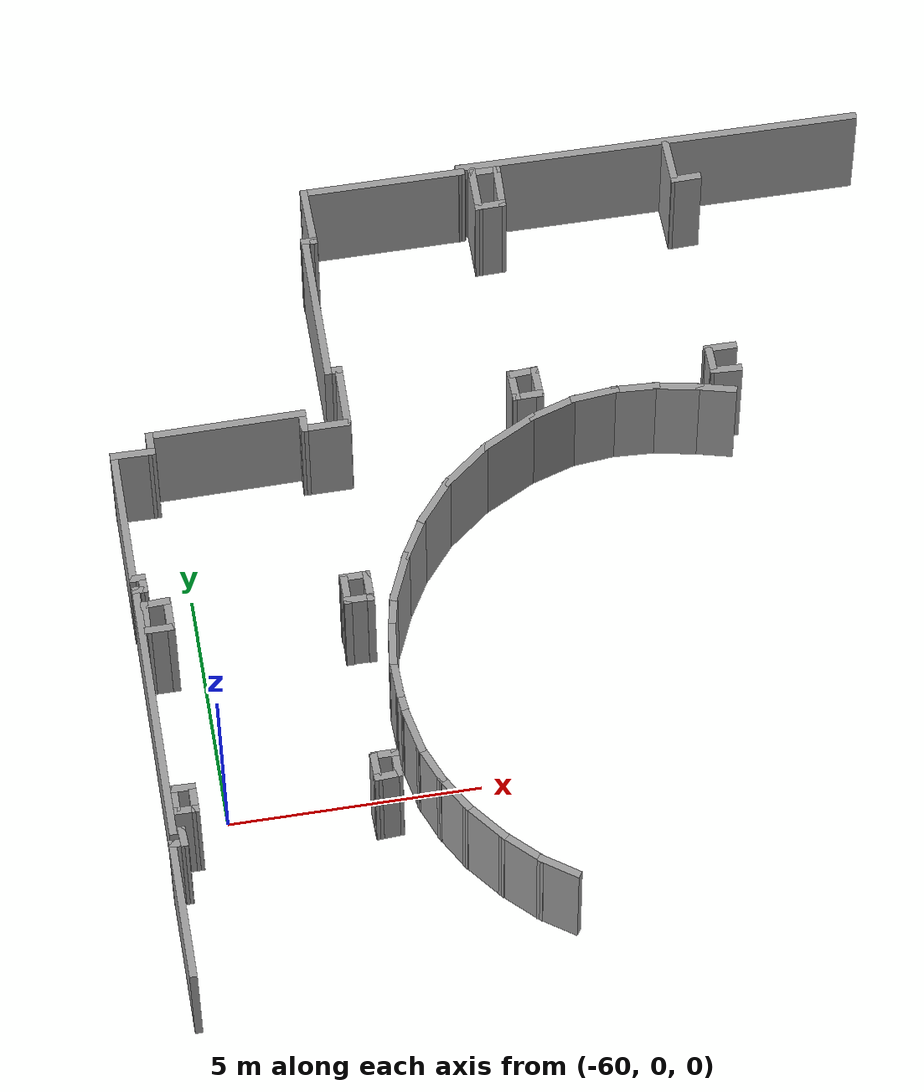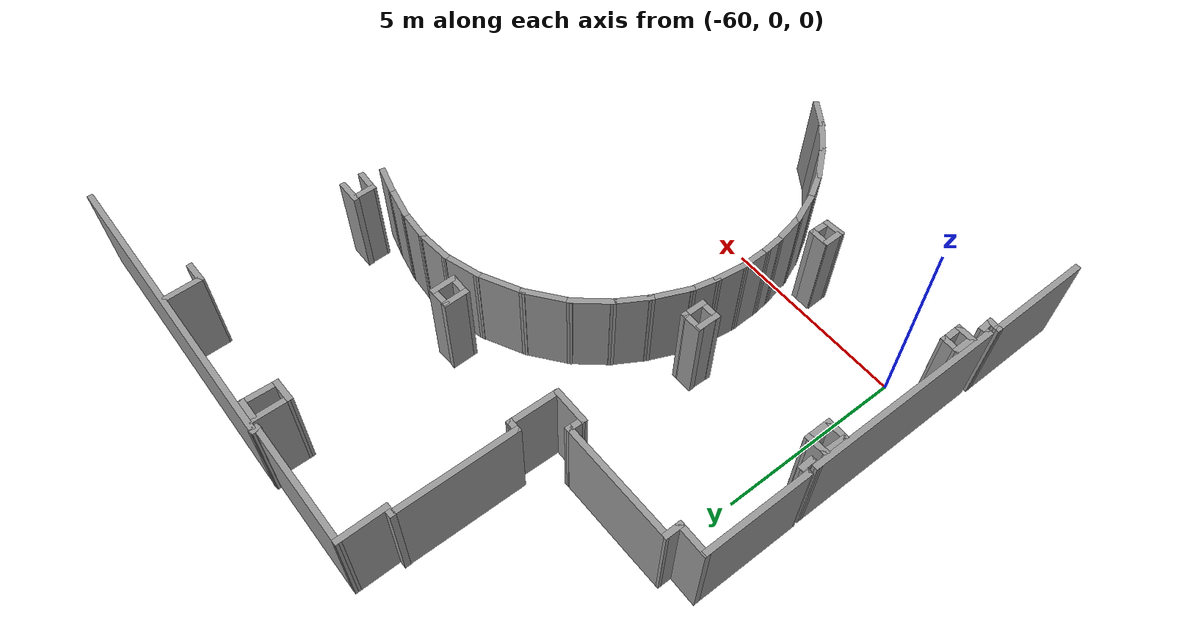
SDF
<sdf version="1.7">
 <model name="TD_n1">
  <pose>-30.6319 -9.22369 0 0 -0 0</pose>
  <link name="Wall_218">
   <collision name="Wall_218_Collision">
    <geometry><box><size>2.90531 0.15 2.5</size></box></geometry>
    <pose>0 0 1.25 0 -0 0</pose>
   </collision>
   <visual name="Wall_218_Visual">
    <pose>0 0 1.25 0 -0 0</pose>
    <geometry><box><size>2.90531 0.15 2.5</size></box></geometry>
    <material>
     <script><uri>file://media/materials/scripts/gazebo.material</uri><name>Gazebo/Grey</name></script>
     <ambient>1 1 1 1</ambient>
    </material>
    <meta><layer>0</layer></meta>
   </visual>
   <pose>-30.5469 6.34915 0 0 -0 1.57439</pose>
  </link>
  <link name="Wall_221">
   <collision name="Wall_221_Collision">
    <geometry><box><size>0.374947 0.15 2.5</size></box></geometry>
    <pose>0 0 1.25 0 -0 0</pose>
   </collision>
   <visual name="Wall_221_Visual">
    <pose>0 0 1.25 0 -0 0</pose>
    <geometry><box><size>0.374947 0.15 2.5</size></box></geometry>
    <material>
     <script><uri>file://media/materials/scripts/gazebo.material</uri><name>Gazebo/Grey</name></script>
     <ambient>1 1 1 1</ambient>
    </material>
    <meta><layer>0</layer></meta>
   </visual>
   <pose>-30.4397 7.71893 0 0 -0 -0.070015</pose>
  </link>
  <link name="Wall_222">
   <collision name="Wall_222_Collision">
    <geometry><box><size>0.42418 0.15 2.5</size></box></geometry>
    <pose>0 0 1.25 0 -0 0</pose>
   </collision>
   <visual name="Wall_222_Visual">
    <pose>0 0 1.25 0 -0 0</pose>
    <geometry><box><size>0.42418 0.15 2.5</size></box></geometry>
    <material>
     <script><uri>file://media/materials/scripts/gazebo.material</uri><name>Gazebo/Grey</name></script>
     <ambient>1 1 1 1</ambient>
    </material>
    <meta><layer>0</layer></meta>
   </visual>
   <pose>-30.3351 7.84794 0 0 -0 1.6263</pose>
  </link>
  <link name="Wall_223">
   <collision name="Wall_223_Collision">
    <geometry><box><size>0.317296 0.15 2.5</size></box></geometry>
    <pose>0 0 1.25 0 -0 0</pose>
   </collision>
   <visual name="Wall_223_Visual">
    <pose>0 0 1.25 0 -0 0</pose>
    <geometry><box><size>0.317296 0.15 2.5</size></box></geometry>
    <material>
     <script><uri>file://media/materials/scripts/gazebo.material</uri><name>Gazebo/Grey</name></script>
     <ambient>1 1 1 1</ambient>
    </material>
    <meta><layer>0</layer></meta>
   </visual>
   <pose>-30.4263 7.98482 0 0 -0 3.14159</pose>
  </link>
  <link name="Wall_224">
   <collision name="Wall_224_Collision">
    <geometry><box><size>5.46308 0.15 2.5</size></box></geometry>
    <pose>0 0 1.25 0 -0 0</pose>
   </collision>
   <visual name="Wall_224_Visual">
    <pose>0 0 1.25 0 -0 0</pose>
    <geometry><box><size>5.46308 0.15 2.5</size></box></geometry>
    <material>
     <script><uri>file://media/materials/scripts/gazebo.material</uri><name>Gazebo/Grey</name></script>
     <ambient>1 1 1 1</ambient>
    </material>
    <meta><layer>0</layer></meta>
   </visual>
   <pose>-30.5111 10.6414 0 0 -0 1.57121</pose>
  </link>
  <link name="Wall_226">
   <collision name="Wall_226_Collision">
    <geometry><box><size>0.315907 0.15 2.5</size></box></geometry>
    <pose>0 0 1.25 0 -0 0</pose>
   </collision>
   <visual name="Wall_226_Visual">
    <pose>0 0 1.25 0 -0 0</pose>
    <geometry><box><size>0.315907 0.15 2.5</size></box></geometry>
    <material>
     <script><uri>file://media/materials/scripts/gazebo.material</uri><name>Gazebo/Grey</name></script>
     <ambient>1 1 1 1</ambient>
    </material>
    <meta><layer>0</layer></meta>
   </visual>
   <pose>-30.4293 13.295 0 0 -0 -0.034469</pose>
  </link>
  <link name="Wall_227">
   <collision name="Wall_227_Collision">
    <geometry><box><size>0.413255 0.15 2.5</size></box></geometry>
    <pose>0 0 1.25 0 -0 0</pose>
   </collision>
   <visual name="Wall_227_Visual">
    <pose>0 0 1.25 0 -0 0</pose>
    <geometry><box><size>0.413255 0.15 2.5</size></box></geometry>
    <material>
     <script><uri>file://media/materials/scripts/gazebo.material</uri><name>Gazebo/Grey</name></script>
     <ambient>1 1 1 1</ambient>
    </material>
    <meta><layer>0</layer></meta>
   </visual>
   <pose>-30.3521 13.4237 0 0 -0 1.61425</pose>
  </link>
  <link name="Wall_228">
   <collision name="Wall_228_Collision">
    <geometry><box><size>0.321526 0.15 2.5</size></box></geometry>
    <pose>0 0 1.25 0 -0 0</pose>
   </collision>
   <visual name="Wall_228_Visual">
    <pose>0 0 1.25 0 -0 0</pose>
    <geometry><box><size>0.321526 0.15 2.5</size></box></geometry>
    <material>
     <script><uri>file://media/materials/scripts/gazebo.material</uri><name>Gazebo/Grey</name></script>
     <ambient>1 1 1 1</ambient>
    </material>
    <meta><layer>0</layer></meta>
   </visual>
   <pose>-30.4436 13.5552 0 0 -0 3.14159</pose>
  </link>
  <link name="Wall_229">
   <collision name="Wall_229_Collision">
    <geometry><box><size>2.91052 0.15 2.5</size></box></geometry>
    <pose>0 0 1.25 0 -0 0</pose>
   </collision>
   <visual name="Wall_229_Visual">
    <pose>0 0 1.25 0 -0 0</pose>
    <geometry><box><size>2.91052 0.15 2.5</size></box></geometry>
    <material>
     <script><uri>file://media/materials/scripts/gazebo.material</uri><name>Gazebo/Grey</name></script>
     <ambient>1 1 1 1</ambient>
    </material>
    <meta><layer>0</layer></meta>
   </visual>
   <pose>-30.5311 14.9354 0 0 -0 1.57204</pose>
  </link>
  <link name="Wall_231">
   <collision name="Wall_231_Collision">
    <geometry><box><size>0.557565 0.15 2.5</size></box></geometry>
    <pose>0 0 1.25 0 -0 0</pose>
   </collision>
   <visual name="Wall_231_Visual">
    <pose>0 0 1.25 0 -0 0</pose>
    <geometry><box><size>0.557565 0.15 2.5</size></box></geometry>
    <material>
     <script><uri>file://media/materials/scripts/gazebo.material</uri><name>Gazebo/Grey</name></script>
     <ambient>1 1 1 1</ambient>
    </material>
    <meta><layer>0</layer></meta>
   </visual>
   <pose>-30.2251 8.39667 0 0 -0 -0.011028</pose>
  </link>
  <link name="Wall_232">
   <collision name="Wall_232_Collision">
    <geometry><box><size>0.6215 0.15 2.5</size></box></geometry>
    <pose>0 0 1.25 0 -0 0</pose>
   </collision>
   <visual name="Wall_232_Visual">
    <pose>0 0 1.25 0 -0 0</pose>
    <geometry><box><size>0.6215 0.15 2.5</size></box></geometry>
    <material>
     <script><uri>file://media/materials/scripts/gazebo.material</uri><name>Gazebo/Grey</name></script>
     <ambient>1 1 1 1</ambient>
    </material>
    <meta><layer>0</layer></meta>
   </visual>
   <pose>-30.0213 8.63017 0 0 -0 1.5708</pose>
  </link>
  <link name="Wall_233">
   <collision name="Wall_233_Collision">
    <geometry><box><size>0.506685 0.15 2.5</size></box></geometry>
    <pose>0 0 1.25 0 -0 0</pose>
   </collision>
   <visual name="Wall_233_Visual">
    <pose>0 0 1.25 0 -0 0</pose>
    <geometry><box><size>0.506685 0.15 2.5</size></box></geometry>
    <material>
     <script><uri>file://media/materials/scripts/gazebo.material</uri><name>Gazebo/Grey</name></script>
     <ambient>1 1 1 1</ambient>
    </material>
    <meta><layer>0</layer></meta>
   </visual>
   <pose>-30.1996 8.87167 0 0 -0 3.10935</pose>
  </link>
  <link name="Wall_234">
   <collision name="Wall_234_Collision">
    <geometry><box><size>0.56416 0.15 2.5</size></box></geometry>
    <pose>0 0 1.25 0 -0 0</pose>
   </collision>
   <visual name="Wall_234_Visual">
    <pose>0 0 1.25 0 -0 0</pose>
    <geometry><box><size>0.56416 0.15 2.5</size></box></geometry>
    <material>
     <script><uri>file://media/materials/scripts/gazebo.material</uri><name>Gazebo/Grey</name></script>
     <ambient>1 1 1 1</ambient>
    </material>
    <meta><layer>0</layer></meta>
   </visual>
   <pose>-30.3778 8.67042 0 0 -0 -1.5708</pose>
  </link>
  <link name="Wall_236">
   <collision name="Wall_236_Collision">
    <geometry><box><size>0.5985 0.15 2.5</size></box></geometry>
    <pose>0 0 1.25 0 -0 0</pose>
   </collision>
   <visual name="Wall_236_Visual">
    <pose>0 0 1.25 0 -0 0</pose>
    <geometry><box><size>0.5985 0.15 2.5</size></box></geometry>
    <material>
     <script><uri>file://media/materials/scripts/gazebo.material</uri><name>Gazebo/Grey</name></script>
     <ambient>1 1 1 1</ambient>
    </material>
    <meta><layer>0</layer></meta>
   </visual>
   <pose>-26.4966 8.72218 0 0 -0 -1.54516</pose>
  </link>
  <link name="Wall_237">
   <collision name="Wall_237_Collision">
    <geometry><box><size>0.553157 0.15 2.5</size></box></geometry>
    <pose>0 0 1.25 0 -0 0</pose>
   </collision>
   <visual name="Wall_237_Visual">
    <pose>0 0 1.25 0 -0 0</pose>
    <geometry><box><size>0.553157 0.15 2.5</size></box></geometry>
    <material>
     <script><uri>file://media/materials/scripts/gazebo.material</uri><name>Gazebo/Grey</name></script>
     <ambient>1 1 1 1</ambient>
    </material>
    <meta><layer>0</layer></meta>
   </visual>
   <pose>-26.2896 8.50943 0 0 -0 0.057081</pose>
  </link>
  <link name="Wall_238">
   <collision name="Wall_238_Collision">
    <geometry><box><size>0.5985 0.15 2.5</size></box></geometry>
    <pose>0 0 1.25 0 -0 0</pose>
   </collision>
   <visual name="Wall_238_Visual">
    <pose>0 0 1.25 0 -0 0</pose>
    <geometry><box><size>0.5985 0.15 2.5</size></box></geometry>
    <material>
     <script><uri>file://media/materials/scripts/gazebo.material</uri><name>Gazebo/Grey</name></script>
     <ambient>1 1 1 1</ambient>
    </material>
    <meta><layer>0</layer></meta>
   </visual>
   <pose>-26.0883 8.74517 0 0 -0 1.5708</pose>
  </link>
  <link name="Wall_239">
   <collision name="Wall_239_Collision">
    <geometry><box><size>0.541 0.15 2.5</size></box></geometry>
    <pose>0 0 1.25 0 -0 0</pose>
   </collision>
   <visual name="Wall_239_Visual">
    <pose>0 0 1.25 0 -0 0</pose>
    <geometry><box><size>0.541 0.15 2.5</size></box></geometry>
    <material>
     <script><uri>file://media/materials/scripts/gazebo.material</uri><name>Gazebo/Grey</name></script>
     <ambient>1 1 1 1</ambient>
    </material>
    <meta><layer>0</layer></meta>
   </visual>
   <pose>-26.2838 8.96942 0 0 -0 3.14159</pose>
  </link>
  <link name="Wall_241">
   <collision name="Wall_241_Collision">
    <geometry><box><size>0.592499 0.15 2.5</size></box></geometry>
    <pose>0 0 1.25 0 -0 0</pose>
   </collision>
   <visual name="Wall_241_Visual">
    <pose>0 0 1.25 0 -0 0</pose>
    <geometry><box><size>0.592499 0.15 2.5</size></box></geometry>
    <material>
     <script><uri>file://media/materials/scripts/gazebo.material</uri><name>Gazebo/Grey</name></script>
     <ambient>1 1 1 1</ambient>
    </material>
    <meta><layer>0</layer></meta>
   </visual>
   <pose>-30.1656 12.3785 0 0 -0 0</pose>
  </link>
  <link name="Wall_242">
   <collision name="Wall_242_Collision">
    <geometry><box><size>0.733294 0.15 2.5</size></box></geometry>
    <pose>0 0 1.25 0 -0 0</pose>
   </collision>
   <visual name="Wall_242_Visual">
    <pose>0 0 1.25 0 -0 0</pose>
    <geometry><box><size>0.733294 0.15 2.5</size></box></geometry>
    <material>
     <script><uri>file://media/materials/scripts/gazebo.material</uri><name>Gazebo/Grey</name></script>
     <ambient>1 1 1 1</ambient>
    </material>
    <meta><layer>0</layer></meta>
   </visual>
   <pose>-29.9444 12.6701 0 0 -0 1.5708</pose>
  </link>
  <link name="Wall_243">
   <collision name="Wall_243_Collision">
    <geometry><box><size>0.592955 0.15 2.5</size></box></geometry>
    <pose>0 0 1.25 0 -0 0</pose>
   </collision>
   <visual name="Wall_243_Visual">
    <pose>0 0 1.25 0 -0 0</pose>
    <geometry><box><size>0.592955 0.15 2.5</size></box></geometry>
    <material>
     <script><uri>file://media/materials/scripts/gazebo.material</uri><name>Gazebo/Grey</name></script>
     <ambient>1 1 1 1</ambient>
    </material>
    <meta><layer>0</layer></meta>
   </visual>
   <pose>-30.1656 12.9517 0 0 -0 -3.09617</pose>
  </link>
  <link name="Wall_244">
   <collision name="Wall_244_Collision">
    <geometry><box><size>0.713539 0.15 2.5</size></box></geometry>
    <pose>0 0 1.25 0 -0 0</pose>
   </collision>
   <visual name="Wall_244_Visual">
    <pose>0 0 1.25 0 -0 0</pose>
    <geometry><box><size>0.713539 0.15 2.5</size></box></geometry>
    <material>
     <script><uri>file://media/materials/scripts/gazebo.material</uri><name>Gazebo/Grey</name></script>
     <ambient>1 1 1 1</ambient>
    </material>
    <meta><layer>0</layer></meta>
   </visual>
   <pose>-30.3969 12.6601 0 0 -0 -1.6065</pose>
  </link>
  <link name="Wall_295">
   <collision name="Wall_295_Collision">
    <geometry><box><size>0.81382 0.15 2.5</size></box></geometry>
    <pose>0 0 1.25 0 -0 0</pose>
   </collision>
   <visual name="Wall_295_Visual">
    <pose>0 0 1.25 0 -0 0</pose>
    <geometry><box><size>0.81382 0.15 2.5</size></box></geometry>
    <material>
     <script><uri>file://media/materials/scripts/gazebo.material</uri><name>Gazebo/Grey</name></script>
     <ambient>1 1 1 1</ambient>
    </material>
    <meta><layer>0</layer></meta>
   </visual>
   <pose>-18.5475 15.9845 0 0 -0 2.89661</pose>
  </link>
  <link name="Wall_296">
   <collision name="Wall_296_Collision">
    <geometry><box><size>1.0161 0.15 2.5</size></box></geometry>
    <pose>0 0 1.25 0 -0 0</pose>
   </collision>
   <visual name="Wall_296_Visual">
    <pose>0 0 1.25 0 -0 0</pose>
    <geometry><box><size>1.0161 0.15 2.5</size></box></geometry>
    <material>
     <script><uri>file://media/materials/scripts/gazebo.material</uri><name>Gazebo/Grey</name></script>
     <ambient>1 1 1 1</ambient>
    </material>
    <meta><layer>0</layer></meta>
   </visual>
   <pose>-19.295 16.1455 0 0 -0 2.95461</pose>
  </link>
  <link name="Wall_297">
   <collision name="Wall_297_Collision">
    <geometry><box><size>0.967229 0.15 2.5</size></box></geometry>
    <pose>0 0 1.25 0 -0 0</pose>
   </collision>
   <visual name="Wall_297_Visual">
    <pose>0 0 1.25 0 -0 0</pose>
    <geometry><box><size>0.967229 0.15 2.5</size></box></geometry>
    <material>
     <script><uri>file://media/materials/scripts/gazebo.material</uri><name>Gazebo/Grey</name></script>
     <ambient>1 1 1 1</ambient>
    </material>
    <meta><layer>0</layer></meta>
   </visual>
   <pose>-20.1287 16.249 0 0 -0 3.08531</pose>
  </link>
  <link name="Wall_298">
   <collision name="Wall_298_Collision">
    <geometry><box><size>0.993351 0.15 2.5</size></box></geometry>
    <pose>0 0 1.25 0 -0 0</pose>
   </collision>
   <visual name="Wall_298_Visual">
    <pose>0 0 1.25 0 -0 0</pose>
    <geometry><box><size>0.993351 0.15 2.5</size></box></geometry>
    <material>
     <script><uri>file://media/materials/scripts/gazebo.material</uri><name>Gazebo/Grey</name></script>
     <ambient>1 1 1 1</ambient>
    </material>
    <meta><layer>0</layer></meta>
   </visual>
   <pose>-20.9567 16.2317 0 0 -0 -3.046</pose>
  </link>
  <link name="Wall_299">
   <collision name="Wall_299_Collision">
    <geometry><box><size>1.07752 0.15 2.5</size></box></geometry>
    <pose>0 0 1.25 0 -0 0</pose>
   </collision>
   <visual name="Wall_299_Visual">
    <pose>0 0 1.25 0 -0 0</pose>
    <geometry><box><size>1.07752 0.15 2.5</size></box></geometry>
    <material>
     <script><uri>file://media/materials/scripts/gazebo.material</uri><name>Gazebo/Grey</name></script>
     <ambient>1 1 1 1</ambient>
    </material>
    <meta><layer>0</layer></meta>
   </visual>
   <pose>-21.8192 16.0535 0 0 -0 -2.83945</pose>
  </link>
  <link name="Wall_300">
   <collision name="Wall_300_Collision">
    <geometry><box><size>1.30213 0.15 2.5</size></box></geometry>
    <pose>0 0 1.25 0 -0 0</pose>
   </collision>
   <visual name="Wall_300_Visual">
    <pose>0 0 1.25 0 -0 0</pose>
    <geometry><box><size>1.30213 0.15 2.5</size></box></geometry>
    <material>
     <script><uri>file://media/materials/scripts/gazebo.material</uri><name>Gazebo/Grey</name></script>
     <ambient>1 1 1 1</ambient>
    </material>
    <meta><layer>0</layer></meta>
   </visual>
   <pose>-22.7737 15.651 0 0 -0 -2.66455</pose>
  </link>
  <link name="Wall_301">
   <collision name="Wall_301_Collision">
    <geometry><box><size>1.24739 0.15 2.5</size></box></geometry>
    <pose>0 0 1.25 0 -0 0</pose>
   </collision>
   <visual name="Wall_301_Visual">
    <pose>0 0 1.25 0 -0 0</pose>
    <geometry><box><size>1.24739 0.15 2.5</size></box></geometry>
    <material>
     <script><uri>file://media/materials/scripts/gazebo.material</uri><name>Gazebo/Grey</name></script>
     <ambient>1 1 1 1</ambient>
    </material>
    <meta><layer>0</layer></meta>
   </visual>
   <pose>-23.7167 15.0472 0 0 -0 -2.47504</pose>
  </link>
  <link name="Wall_302">
   <collision name="Wall_302_Collision">
    <geometry><box><size>1.1218 0.15 2.5</size></box></geometry>
    <pose>0 0 1.25 0 -0 0</pose>
   </collision>
   <visual name="Wall_302_Visual">
    <pose>0 0 1.25 0 -0 0</pose>
    <geometry><box><size>1.1218 0.15 2.5</size></box></geometry>
    <material>
     <script><uri>file://media/materials/scripts/gazebo.material</uri><name>Gazebo/Grey</name></script>
     <ambient>1 1 1 1</ambient>
    </material>
    <meta><layer>0</layer></meta>
   </visual>
   <pose>-24.4585 14.3342 0 0 -0 -2.26402</pose>
  </link>
  <link name="Wall_304">
   <collision name="Wall_304_Collision">
    <geometry><box><size>1.01587 0.15 2.5</size></box></geometry>
    <pose>0 0 1.25 0 -0 0</pose>
   </collision>
   <visual name="Wall_304_Visual">
    <pose>0 0 1.25 0 -0 0</pose>
    <geometry><box><size>1.01587 0.15 2.5</size></box></geometry>
    <material>
     <script><uri>file://media/materials/scripts/gazebo.material</uri><name>Gazebo/Grey</name></script>
     <ambient>1 1 1 1</ambient>
    </material>
    <meta><layer>0</layer></meta>
   </visual>
   <pose>-24.9875 13.5867 0 0 -0 -2.09983</pose>
  </link>
  <link name="Wall_305">
   <collision name="Wall_305_Collision">
    <geometry><box><size>1.11339 0.15 2.5</size></box></geometry>
    <pose>0 0 1.25 0 -0 0</pose>
   </collision>
   <visual name="Wall_305_Visual">
    <pose>0 0 1.25 0 -0 0</pose>
    <geometry><box><size>1.11339 0.15 2.5</size></box></geometry>
    <material>
     <script><uri>file://media/materials/scripts/gazebo.material</uri><name>Gazebo/Grey</name></script>
     <ambient>1 1 1 1</ambient>
    </material>
    <meta><layer>0</layer></meta>
   </visual>
   <pose>-25.3957 12.7702 0 0 -0 -1.97569</pose>
  </link>
  <link name="Wall_306">
   <collision name="Wall_306_Collision">
    <geometry><box><size>0.80862 0.15 2.5</size></box></geometry>
    <pose>0 0 1.25 0 -0 0</pose>
   </collision>
   <visual name="Wall_306_Visual">
    <pose>0 0 1.25 0 -0 0</pose>
    <geometry><box><size>0.80862 0.15 2.5</size></box></geometry>
    <material>
     <script><uri>file://media/materials/scripts/gazebo.material</uri><name>Gazebo/Grey</name></script>
     <ambient>1 1 1 1</ambient>
    </material>
    <meta><layer>0</layer></meta>
   </visual>
   <pose>-25.6545 12.0055 0 0 -0 -1.78189</pose>
  </link>
  <link name="Wall_307">
   <collision name="Wall_307_Collision">
    <geometry><box><size>0.90314 0.15 2.5</size></box></geometry>
    <pose>0 0 1.25 0 -0 0</pose>
   </collision>
   <visual name="Wall_307_Visual">
    <pose>0 0 1.25 0 -0 0</pose>
    <geometry><box><size>0.90314 0.15 2.5</size></box></geometry>
    <material>
     <script><uri>file://media/materials/scripts/gazebo.material</uri><name>Gazebo/Grey</name></script>
     <ambient>1 1 1 1</ambient>
    </material>
    <meta><layer>0</layer></meta>
   </visual>
   <pose>-25.7695 11.3097 0 0 -0 -1.69326</pose>
  </link>
  <link name="Wall_308">
   <collision name="Wall_308_Collision">
    <geometry><box><size>0.874865 0.15 2.5</size></box></geometry>
    <pose>0 0 1.25 0 -0 0</pose>
   </collision>
   <visual name="Wall_308_Visual">
    <pose>0 0 1.25 0 -0 0</pose>
    <geometry><box><size>0.874865 0.15 2.5</size></box></geometry>
    <material>
     <script><uri>file://media/materials/scripts/gazebo.material</uri><name>Gazebo/Grey</name></script>
     <ambient>1 1 1 1</ambient>
    </material>
    <meta><layer>0</layer></meta>
   </visual>
   <pose>-25.804 10.5737 0 0 -0 -1.53906</pose>
  </link>
  <link name="Wall_309">
   <collision name="Wall_309_Collision">
    <geometry><box><size>0.589414 0.15 2.5</size></box></geometry>
    <pose>0 0 1.25 0 -0 0</pose>
   </collision>
   <visual name="Wall_309_Visual">
    <pose>0 0 1.25 0 -0 0</pose>
    <geometry><box><size>0.589414 0.15 2.5</size></box></geometry>
    <material>
     <script><uri>file://media/materials/scripts/gazebo.material</uri><name>Gazebo/Grey</name></script>
     <ambient>1 1 1 1</ambient>
    </material>
    <meta><layer>0</layer></meta>
   </visual>
   <pose>-25.7695 9.99298 0 0 -0 -1.46592</pose>
  </link>
  <link name="Wall_311">
   <collision name="Wall_311_Collision">
    <geometry><box><size>0.973275 0.15 2.5</size></box></geometry>
    <pose>0 0 1.25 0 -0 0</pose>
   </collision>
   <visual name="Wall_311_Visual">
    <pose>0 0 1.25 0 -0 0</pose>
    <geometry><box><size>0.973275 0.15 2.5</size></box></geometry>
    <material>
     <script><uri>file://media/materials/scripts/gazebo.material</uri><name>Gazebo/Grey</name></script>
     <ambient>1 1 1 1</ambient>
    </material>
    <meta><layer>0</layer></meta>
   </visual>
   <pose>-25.6602 9.37198 0 0 -0 -1.3597</pose>
  </link>
  <link name="Wall_312">
   <collision name="Wall_312_Collision">
    <geometry><box><size>0.908128 0.15 2.5</size></box></geometry>
    <pose>0 0 1.25 0 -0 0</pose>
   </collision>
   <visual name="Wall_312_Visual">
    <pose>0 0 1.25 0 -0 0</pose>
    <geometry><box><size>0.908128 0.15 2.5</size></box></geometry>
    <material>
     <script><uri>file://media/materials/scripts/gazebo.material</uri><name>Gazebo/Grey</name></script>
     <ambient>1 1 1 1</ambient>
    </material>
    <meta><layer>0</layer></meta>
   </visual>
   <pose>-25.4302 8.61873 0 0 -0 -1.18184</pose>
  </link>
  <link name="Wall_313">
   <collision name="Wall_313_Collision">
    <geometry><box><size>0.923156 0.15 2.5</size></box></geometry>
    <pose>0 0 1.25 0 -0 0</pose>
   </collision>
   <visual name="Wall_313_Visual">
    <pose>0 0 1.25 0 -0 0</pose>
    <geometry><box><size>0.923156 0.15 2.5</size></box></geometry>
    <material>
     <script><uri>file://media/materials/scripts/gazebo.material</uri><name>Gazebo/Grey</name></script>
     <ambient>1 1 1 1</ambient>
    </material>
    <meta><layer>0</layer></meta>
   </visual>
   <pose>-25.091 7.93448 0 0 -0 -1.04058</pose>
  </link>
  <link name="Wall_314">
   <collision name="Wall_314_Collision">
    <geometry><box><size>1.06597 0.15 2.5</size></box></geometry>
    <pose>0 0 1.25 0 -0 0</pose>
   </collision>
   <visual name="Wall_314_Visual">
    <pose>0 0 1.25 0 -0 0</pose>
    <geometry><box><size>1.06597 0.15 2.5</size></box></geometry>
    <material>
     <script><uri>file://media/materials/scripts/gazebo.material</uri><name>Gazebo/Grey</name></script>
     <ambient>1 1 1 1</ambient>
    </material>
    <meta><layer>0</layer></meta>
   </visual>
   <pose>-24.608 7.24448 0 0 -0 -0.892134</pose>
  </link>
  <link name="Wall_315">
   <collision name="Wall_315_Collision">
    <geometry><box><size>1.02838 0.15 2.5</size></box></geometry>
    <pose>0 0 1.25 0 -0 0</pose>
   </collision>
   <visual name="Wall_315_Visual">
    <pose>0 0 1.25 0 -0 0</pose>
    <geometry><box><size>1.02838 0.15 2.5</size></box></geometry>
    <material>
     <script><uri>file://media/materials/scripts/gazebo.material</uri><name>Gazebo/Grey</name></script>
     <ambient>1 1 1 1</ambient>
    </material>
    <meta><layer>0</layer></meta>
   </visual>
   <pose>-24.0042 6.58323 0 0 -0 -0.766882</pose>
  </link>
  <link name="Wall_316">
   <collision name="Wall_316_Collision">
    <geometry><box><size>0.877324 0.15 2.5</size></box></geometry>
    <pose>0 0 1.25 0 -0 0</pose>
   </collision>
   <visual name="Wall_316_Visual">
    <pose>0 0 1.25 0 -0 0</pose>
    <geometry><box><size>0.877324 0.15 2.5</size></box></geometry>
    <material>
     <script><uri>file://media/materials/scripts/gazebo.material</uri><name>Gazebo/Grey</name></script>
     <ambient>1 1 1 1</ambient>
    </material>
    <meta><layer>0</layer></meta>
   </visual>
   <pose>-23.389 6.07148 0 0 -0 -0.605545</pose>
  </link>
  <link name="Wall_322">
   <collision name="Wall_322_Collision">
    <geometry><box><size>0.608531 0.15 2.5</size></box></geometry>
    <pose>0 0 1.25 0 -0 0</pose>
   </collision>
   <visual name="Wall_322_Visual">
    <pose>0 0 1.25 0 -0 0</pose>
    <geometry><box><size>0.608531 0.15 2.5</size></box></geometry>
    <material>
     <script><uri>file://media/materials/scripts/gazebo.material</uri><name>Gazebo/Grey</name></script>
     <ambient>1 1 1 1</ambient>
    </material>
    <meta><layer>0</layer></meta>
   </visual>
   <pose>-26.2629 12.9196 0 0 -0 0.004466</pose>
  </link>
  <link name="Wall_323">
   <collision name="Wall_323_Collision">
    <geometry><box><size>0.668428 0.15 2.5</size></box></geometry>
    <pose>0 0 1.25 0 -0 0</pose>
   </collision>
   <visual name="Wall_323_Visual">
    <pose>0 0 1.25 0 -0 0</pose>
    <geometry><box><size>0.668428 0.15 2.5</size></box></geometry>
    <material>
     <script><uri>file://media/materials/scripts/gazebo.material</uri><name>Gazebo/Grey</name></script>
     <ambient>1 1 1 1</ambient>
    </material>
    <meta><layer>0</layer></meta>
   </visual>
   <pose>-26.0325 12.6614 0 0 -0 -1.5666</pose>
  </link>
  <link name="Wall_324">
   <collision name="Wall_324_Collision">
    <geometry><box><size>0.59965 0.15 2.5</size></box></geometry>
    <pose>0 0 1.25 0 -0 0</pose>
   </collision>
   <visual name="Wall_324_Visual">
    <pose>0 0 1.25 0 -0 0</pose>
    <geometry><box><size>0.59965 0.15 2.5</size></box></geometry>
    <material>
     <script><uri>file://media/materials/scripts/gazebo.material</uri><name>Gazebo/Grey</name></script>
     <ambient>1 1 1 1</ambient>
    </material>
    <meta><layer>0</layer></meta>
   </visual>
   <pose>-26.2663 12.4122 0 0 -0 3.14159</pose>
  </link>
  <link name="Wall_325">
   <collision name="Wall_325_Collision">
    <geometry><box><size>0.6203 0.15 2.5</size></box></geometry>
    <pose>0 0 1.25 0 -0 0</pose>
   </collision>
   <visual name="Wall_325_Visual">
    <pose>0 0 1.25 0 -0 0</pose>
    <geometry><box><size>0.6203 0.15 2.5</size></box></geometry>
    <material>
     <script><uri>file://media/materials/scripts/gazebo.material</uri><name>Gazebo/Grey</name></script>
     <ambient>1 1 1 1</ambient>
    </material>
    <meta><layer>0</layer></meta>
   </visual>
   <pose>-26.4811 12.6374 0 0 -0 1.5708</pose>
  </link>
  <link name="Wall_327">
   <collision name="Wall_327_Collision">
    <geometry><box><size>0.900267 0.15 2.5</size></box></geometry>
    <pose>0 0 1.25 0 -0 0</pose>
   </collision>
   <visual name="Wall_327_Visual">
    <pose>0 0 1.25 0 -0 0</pose>
    <geometry><box><size>0.900267 0.15 2.5</size></box></geometry>
    <material>
     <script><uri>file://media/materials/scripts/gazebo.material</uri><name>Gazebo/Grey</name></script>
     <ambient>1 1 1 1</ambient>
    </material>
    <meta><layer>0</layer></meta>
   </visual>
   <pose>-30.1608 16.3502 0 0 -0 -0.013333</pose>
  </link>
  <link name="Wall_328">
   <collision name="Wall_328_Collision">
    <geometry><box><size>0.51 0.15 2.5</size></box></geometry>
    <pose>0 0 1.25 0 -0 0</pose>
   </collision>
   <visual name="Wall_328_Visual">
    <pose>0 0 1.25 0 -0 0</pose>
    <geometry><box><size>0.51 0.15 2.5</size></box></geometry>
    <material>
     <script><uri>file://media/materials/scripts/gazebo.material</uri><name>Gazebo/Grey</name></script>
     <ambient>1 1 1 1</ambient>
    </material>
    <meta><layer>0</layer></meta>
   </visual>
   <pose>-29.7858 16.5252 0 0 -0 1.5708</pose>
  </link>
  <link name="Wall_329">
   <collision name="Wall_329_Collision">
    <geometry><box><size>3.20026 0.15 2.5</size></box></geometry>
    <pose>0 0 1.25 0 -0 0</pose>
   </collision>
   <visual name="Wall_329_Visual">
    <pose>0 0 1.25 0 -0 0</pose>
    <geometry><box><size>3.20026 0.15 2.5</size></box></geometry>
    <material>
     <script><uri>file://media/materials/scripts/gazebo.material</uri><name>Gazebo/Grey</name></script>
     <ambient>1 1 1 1</ambient>
    </material>
    <meta><layer>0</layer></meta>
   </visual>
   <pose>-28.2608 16.7202 0 0 -0 0.009836</pose>
  </link>
  <link name="Wall_330">
   <collision name="Wall_330_Collision">
    <geometry><box><size>0.500571 0.15 2.5</size></box></geometry>
    <pose>0 0 1.25 0 -0 0</pose>
   </collision>
   <visual name="Wall_330_Visual">
    <pose>0 0 1.25 0 -0 0</pose>
    <geometry><box><size>0.500571 0.15 2.5</size></box></geometry>
    <material>
     <script><uri>file://media/materials/scripts/gazebo.material</uri><name>Gazebo/Grey</name></script>
     <ambient>1 1 1 1</ambient>
    </material>
    <meta><layer>0</layer></meta>
   </visual>
   <pose>-26.7408 16.5602 0 0 -0 -1.59936</pose>
  </link>
  <link name="Wall_331">
   <collision name="Wall_331_Collision">
    <geometry><box><size>1.00006 0.15 2.5</size></box></geometry>
    <pose>0 0 1.25 0 -0 0</pose>
   </collision>
   <visual name="Wall_331_Visual">
    <pose>0 0 1.25 0 -0 0</pose>
    <geometry><box><size>1.00006 0.15 2.5</size></box></geometry>
    <material>
     <script><uri>file://media/materials/scripts/gazebo.material</uri><name>Gazebo/Grey</name></script>
     <ambient>1 1 1 1</ambient>
    </material>
    <meta><layer>0</layer></meta>
   </visual>
   <pose>-26.3208 16.3852 0 0 -0 0</pose>
  </link>
  <link name="Wall_333">
   <collision name="Wall_333_Collision">
    <geometry><box><size>1.3232 0.15 2.5</size></box></geometry>
    <pose>0 0 1.25 0 -0 0</pose>
   </collision>
   <visual name="Wall_333_Visual">
    <pose>0 0 1.25 0 -0 0</pose>
    <geometry><box><size>1.3232 0.15 2.5</size></box></geometry>
    <material>
     <script><uri>file://media/materials/scripts/gazebo.material</uri><name>Gazebo/Grey</name></script>
     <ambient>1 1 1 1</ambient>
    </material>
    <meta><layer>0</layer></meta>
   </visual>
   <pose>-25.8759 17.0287 0 0 -0 1.56185</pose>
  </link>
  <link name="Wall_335">
   <collision name="Wall_335_Collision">
    <geometry><box><size>0.3685 0.15 2.5</size></box></geometry>
    <pose>0 0 1.25 0 -0 0</pose>
   </collision>
   <visual name="Wall_335_Visual">
    <pose>0 0 1.25 0 -0 0</pose>
    <geometry><box><size>0.3685 0.15 2.5</size></box></geometry>
    <material>
     <script><uri>file://media/materials/scripts/gazebo.material</uri><name>Gazebo/Grey</name></script>
     <ambient>1 1 1 1</ambient>
    </material>
    <meta><layer>0</layer></meta>
   </visual>
   <pose>-25.9799 17.6153 0 0 -0 3.14159</pose>
  </link>
  <link name="Wall_336">
   <collision name="Wall_336_Collision">
    <geometry><box><size>3.1055 0.15 2.5</size></box></geometry>
    <pose>0 0 1.25 0 -0 0</pose>
   </collision>
   <visual name="Wall_336_Visual">
    <pose>0 0 1.25 0 -0 0</pose>
    <geometry><box><size>3.1055 0.15 2.5</size></box></geometry>
    <material>
     <script><uri>file://media/materials/scripts/gazebo.material</uri><name>Gazebo/Grey</name></script>
     <ambient>1 1 1 1</ambient>
    </material>
    <meta><layer>0</layer></meta>
   </visual>
   <pose>-26.0892 19.093 0 0 -0 1.5708</pose>
  </link>
  <link name="Wall_338">
   <collision name="Wall_338_Collision">
    <geometry><box><size>0.334 0.15 2.5</size></box></geometry>
    <pose>0 0 1.25 0 -0 0</pose>
   </collision>
   <visual name="Wall_338_Visual">
    <pose>0 0 1.25 0 -0 0</pose>
    <geometry><box><size>0.334 0.15 2.5</size></box></geometry>
    <material>
     <script><uri>file://media/materials/scripts/gazebo.material</uri><name>Gazebo/Grey</name></script>
     <ambient>1 1 1 1</ambient>
    </material>
    <meta><layer>0</layer></meta>
   </visual>
   <pose>-26.0087 20.6973 0 0 -0 0</pose>
  </link>
  <link name="Wall_339">
   <collision name="Wall_339_Collision">
    <geometry><box><size>1.30023 0.15 2.5</size></box></geometry>
    <pose>0 0 1.25 0 -0 0</pose>
   </collision>
   <visual name="Wall_339_Visual">
    <pose>0 0 1.25 0 -0 0</pose>
    <geometry><box><size>1.30023 0.15 2.5</size></box></geometry>
    <material>
     <script><uri>file://media/materials/scripts/gazebo.material</uri><name>Gazebo/Grey</name></script>
     <ambient>1 1 1 1</ambient>
    </material>
    <meta><layer>0</layer></meta>
   </visual>
   <pose>-25.9282 21.2723 0 0 -0 1.59079</pose>
  </link>
  <link name="Wall_340">
   <collision name="Wall_340_Collision">
    <geometry><box><size>3.3585 0.15 2.5</size></box></geometry>
    <pose>0 0 1.25 0 -0 0</pose>
   </collision>
   <visual name="Wall_340_Visual">
    <pose>0 0 1.25 0 -0 0</pose>
    <geometry><box><size>3.3585 0.15 2.5</size></box></geometry>
    <material>
     <script><uri>file://media/materials/scripts/gazebo.material</uri><name>Gazebo/Grey</name></script>
     <ambient>1 1 1 1</ambient>
    </material>
    <meta><layer>0</layer></meta>
   </visual>
   <pose>-24.3354 21.8473 0 0 -0 0</pose>
  </link>
  <link name="Wall_341">
   <collision name="Wall_341_Collision">
    <geometry><box><size>0.244831 0.15 2.5</size></box></geometry>
    <pose>0 0 1.25 0 -0 0</pose>
   </collision>
   <visual name="Wall_341_Visual">
    <pose>0 0 1.25 0 -0 0</pose>
    <geometry><box><size>0.244831 0.15 2.5</size></box></geometry>
    <material>
     <script><uri>file://media/materials/scripts/gazebo.material</uri><name>Gazebo/Grey</name></script>
     <ambient>1 1 1 1</ambient>
    </material>
    <meta><layer>0</layer></meta>
   </visual>
   <pose>-22.7427 21.8933 0 0 -0 1.81577</pose>
  </link>
  <link name="Wall_342">
   <collision name="Wall_342_Collision">
    <geometry><box><size>8.25816 0.15 2.5</size></box></geometry>
    <pose>0 0 1.25 0 -0 0</pose>
   </collision>
   <visual name="Wall_342_Visual">
    <pose>0 0 1.25 0 -0 0</pose>
    <geometry><box><size>8.25816 0.15 2.5</size></box></geometry>
    <material>
     <script><uri>file://media/materials/scripts/gazebo.material</uri><name>Gazebo/Grey</name></script>
     <ambient>1 1 1 1</ambient>
    </material>
    <meta><layer>0</layer></meta>
   </visual>
   <pose>-18.7004 21.922 0 0 -0 -0.004255</pose>
  </link>
  <link name="Wall_344">
   <collision name="Wall_344_Collision">
    <geometry><box><size>1.024 0.15 2.5</size></box></geometry>
    <pose>0 0 1.25 0 -0 0</pose>
   </collision>
   <visual name="Wall_344_Visual">
    <pose>0 0 1.25 0 -0 0</pose>
    <geometry><box><size>1.024 0.15 2.5</size></box></geometry>
    <material>
     <script><uri>file://media/materials/scripts/gazebo.material</uri><name>Gazebo/Grey</name></script>
     <ambient>1 1 1 1</ambient>
    </material>
    <meta><layer>0</layer></meta>
   </visual>
   <pose>-22.5127 21.3988 0 0 -0 -1.5708</pose>
  </link>
  <link name="Wall_345">
   <collision name="Wall_345_Collision">
    <geometry><box><size>0.633137 0.15 2.5</size></box></geometry>
    <pose>0 0 1.25 0 -0 0</pose>
   </collision>
   <visual name="Wall_345_Visual">
    <pose>0 0 1.25 0 -0 0</pose>
    <geometry><box><size>0.633137 0.15 2.5</size></box></geometry>
    <material>
     <script><uri>file://media/materials/scripts/gazebo.material</uri><name>Gazebo/Grey</name></script>
     <ambient>1 1 1 1</ambient>
    </material>
    <meta><layer>0</layer></meta>
   </visual>
   <pose>-22.2712 20.9675 0 0 -0 0.023805</pose>
  </link>
  <link name="Wall_346">
   <collision name="Wall_346_Collision">
    <geometry><box><size>0.967795 0.15 2.5</size></box></geometry>
    <pose>0 0 1.25 0 -0 0</pose>
   </collision>
   <visual name="Wall_346_Visual">
    <pose>0 0 1.25 0 -0 0</pose>
    <geometry><box><size>0.967795 0.15 2.5</size></box></geometry>
    <material>
     <script><uri>file://media/materials/scripts/gazebo.material</uri><name>Gazebo/Grey</name></script>
     <ambient>1 1 1 1</ambient>
    </material>
    <meta><layer>0</layer></meta>
   </visual>
   <pose>-22.0182 21.3815 0 0 -0 1.54263</pose>
  </link>
  <link name="Wall_347">
   <collision name="Wall_347_Collision">
    <geometry><box><size>0.622061 0.15 2.5</size></box></geometry>
    <pose>0 0 1.25 0 -0 0</pose>
   </collision>
   <visual name="Wall_347_Visual">
    <pose>0 0 1.25 0 -0 0</pose>
    <geometry><box><size>0.622061 0.15 2.5</size></box></geometry>
    <material>
     <script><uri>file://media/materials/scripts/gazebo.material</uri><name>Gazebo/Grey</name></script>
     <ambient>1 1 1 1</ambient>
    </material>
    <meta><layer>0</layer></meta>
   </visual>
   <pose>-22.2424 21.7898 0 0 -0 3.14159</pose>
  </link>
  <link name="Wall_349">
   <collision name="Wall_349_Collision">
    <geometry><box><size>1.01281 0.15 2.5</size></box></geometry>
    <pose>0 0 1.25 0 -0 0</pose>
   </collision>
   <visual name="Wall_349_Visual">
    <pose>0 0 1.25 0 -0 0</pose>
    <geometry><box><size>1.01281 0.15 2.5</size></box></geometry>
    <material>
     <script><uri>file://media/materials/scripts/gazebo.material</uri><name>Gazebo/Grey</name></script>
     <ambient>1 1 1 1</ambient>
    </material>
    <meta><layer>0</layer></meta>
   </visual>
   <pose>-18.5107 21.4045 0 0 -0 -1.54414</pose>
  </link>
  <link name="Wall_350">
   <collision name="Wall_350_Collision">
    <geometry><box><size>0.62164 0.15 2.5</size></box></geometry>
    <pose>0 0 1.25 0 -0 0</pose>
   </collision>
   <visual name="Wall_350_Visual">
    <pose>0 0 1.25 0 -0 0</pose>
    <geometry><box><size>0.62164 0.15 2.5</size></box></geometry>
    <material>
     <script><uri>file://media/materials/scripts/gazebo.material</uri><name>Gazebo/Grey</name></script>
     <ambient>1 1 1 1</ambient>
    </material>
    <meta><layer>0</layer></meta>
   </visual>
   <pose>-18.2634 20.979 0 0 -0 0.024385</pose>
  </link>
  <link name="Wall_379">
   <collision name="Wall_379_Collision">
    <geometry><box><size>0.692474 0.15 2.5</size></box></geometry>
    <pose>0 0 1.25 0 -0 0</pose>
   </collision>
   <visual name="Wall_379_Visual">
    <pose>0 0 1.25 0 -0 0</pose>
    <geometry><box><size>0.692474 0.15 2.5</size></box></geometry>
    <material>
     <script><uri>file://media/materials/scripts/gazebo.material</uri><name>Gazebo/Grey</name></script>
     <ambient>1 1 1 1</ambient>
    </material>
    <meta><layer>0</layer></meta>
   </visual>
   <pose>-22.5048 16.6935 0 0 -0 -1.53855</pose>
  </link>
  <link name="Wall_380">
   <collision name="Wall_380_Collision">
    <geometry><box><size>0.622312 0.15 2.5</size></box></geometry>
    <pose>0 0 1.25 0 -0 0</pose>
   </collision>
   <visual name="Wall_380_Visual">
    <pose>0 0 1.25 0 -0 0</pose>
    <geometry><box><size>0.622312 0.15 2.5</size></box></geometry>
    <material>
     <script><uri>file://media/materials/scripts/gazebo.material</uri><name>Gazebo/Grey</name></script>
     <ambient>1 1 1 1</ambient>
    </material>
    <meta><layer>0</layer></meta>
   </visual>
   <pose>-22.2602 16.4282 0 0 -0 0.024372</pose>
  </link>
  <link name="Wall_381">
   <collision name="Wall_381_Collision">
    <geometry><box><size>0.692474 0.15 2.5</size></box></geometry>
    <pose>0 0 1.25 0 -0 0</pose>
   </collision>
   <visual name="Wall_381_Visual">
    <pose>0 0 1.25 0 -0 0</pose>
    <geometry><box><size>0.692474 0.15 2.5</size></box></geometry>
    <material>
     <script><uri>file://media/materials/scripts/gazebo.material</uri><name>Gazebo/Grey</name></script>
     <ambient>1 1 1 1</ambient>
    </material>
    <meta><layer>0</layer></meta>
   </visual>
   <pose>-22.033 16.6935 0 0 -0 1.60304</pose>
  </link>
  <link name="Wall_382">
   <collision name="Wall_382_Collision">
    <geometry><box><size>0.586806 0.15 2.5</size></box></geometry>
    <pose>0 0 1.25 0 -0 0</pose>
   </collision>
   <visual name="Wall_382_Visual">
    <pose>0 0 1.25 0 -0 0</pose>
    <geometry><box><size>0.586806 0.15 2.5</size></box></geometry>
    <material>
     <script><uri>file://media/materials/scripts/gazebo.material</uri><name>Gazebo/Grey</name></script>
     <ambient>1 1 1 1</ambient>
    </material>
    <meta><layer>0</layer></meta>
   </visual>
   <pose>-22.2602 16.9616 0 0 -0 -3.07532</pose>
  </link>
  <link name="Wall_384">
   <collision name="Wall_384_Collision">
    <geometry><box><size>0.6675 0.15 2.5</size></box></geometry>
    <pose>0 0 1.25 0 -0 0</pose>
   </collision>
   <visual name="Wall_384_Visual">
    <pose>0 0 1.25 0 -0 0</pose>
    <geometry><box><size>0.6675 0.15 2.5</size></box></geometry>
    <material>
     <script><uri>file://media/materials/scripts/gazebo.material</uri><name>Gazebo/Grey</name></script>
     <ambient>1 1 1 1</ambient>
    </material>
    <meta><layer>0</layer></meta>
   </visual>
   <pose>-18.3051 16.9106 0 0 -0 0</pose>
  </link>
  <link name="Wall_386">
   <collision name="Wall_386_Collision">
    <geometry><box><size>0.644634 0.15 2.5</size></box></geometry>
    <pose>0 0 1.25 0 -0 0</pose>
   </collision>
   <visual name="Wall_386_Visual">
    <pose>0 0 1.25 0 -0 0</pose>
    <geometry><box><size>0.644634 0.15 2.5</size></box></geometry>
    <material>
     <script><uri>file://media/materials/scripts/gazebo.material</uri><name>Gazebo/Grey</name></script>
     <ambient>1 1 1 1</ambient>
    </material>
    <meta><layer>0</layer></meta>
   </visual>
   <pose>-18.2821 16.3931 0 0 -0 3.09511</pose>
  </link>
  <link name="Wall_387">
   <collision name="Wall_387_Collision">
    <geometry><box><size>0.610575 0.15 2.5</size></box></geometry>
    <pose>0 0 1.25 0 -0 0</pose>
   </collision>
   <visual name="Wall_387_Visual">
    <pose>0 0 1.25 0 -0 0</pose>
    <geometry><box><size>0.610575 0.15 2.5</size></box></geometry>
    <material>
     <script><uri>file://media/materials/scripts/gazebo.material</uri><name>Gazebo/Grey</name></script>
     <ambient>1 1 1 1</ambient>
    </material>
    <meta><layer>0</layer></meta>
   </visual>
   <pose>-18.5351 16.6346 0 0 -0 1.59579</pose>
  </link>
  <static>1</static>
 </model>
</sdf>
